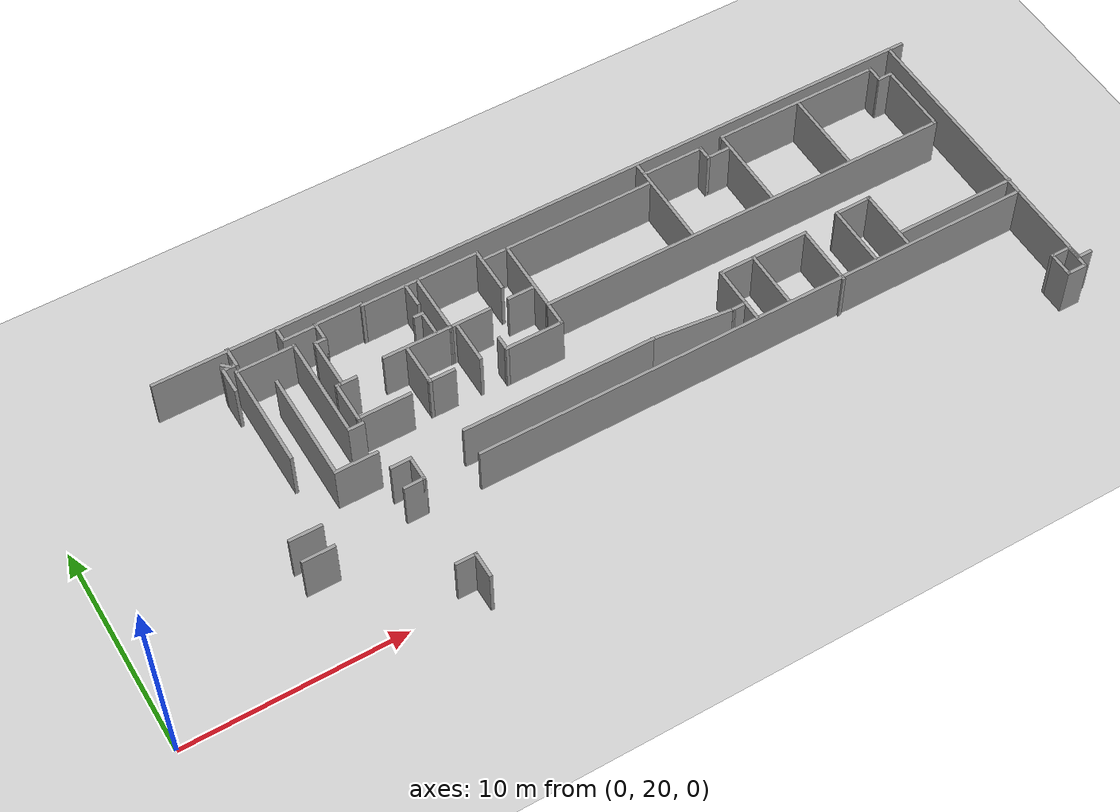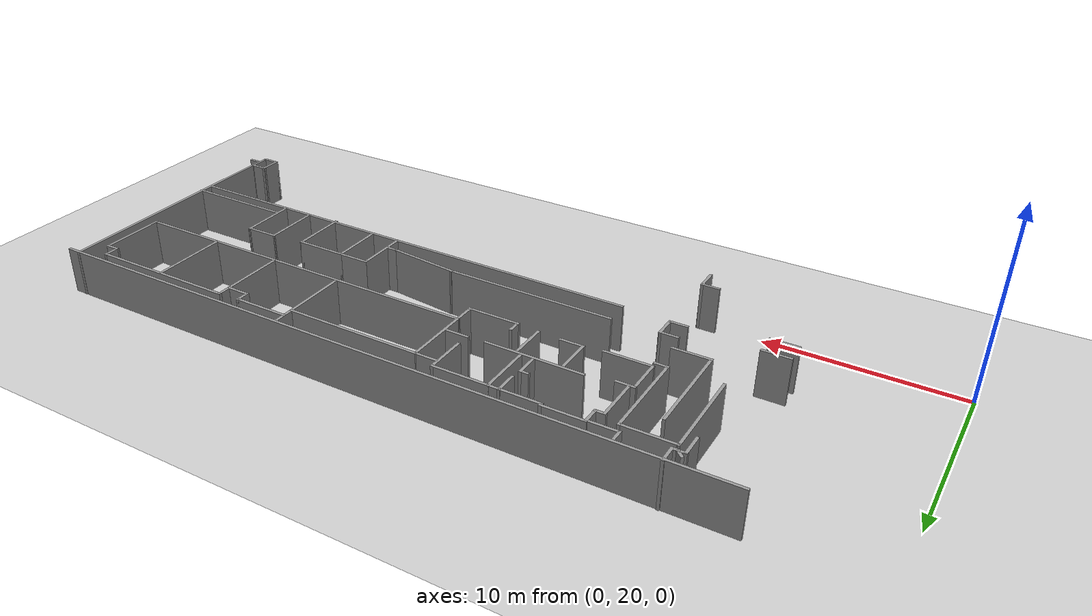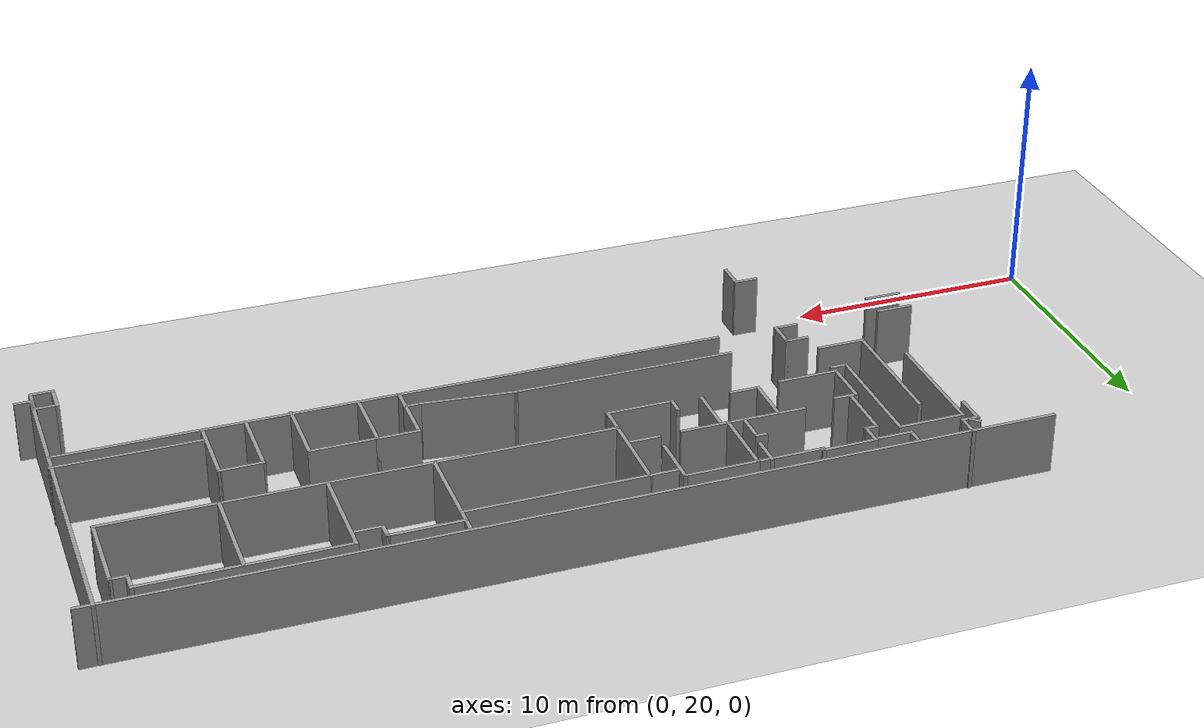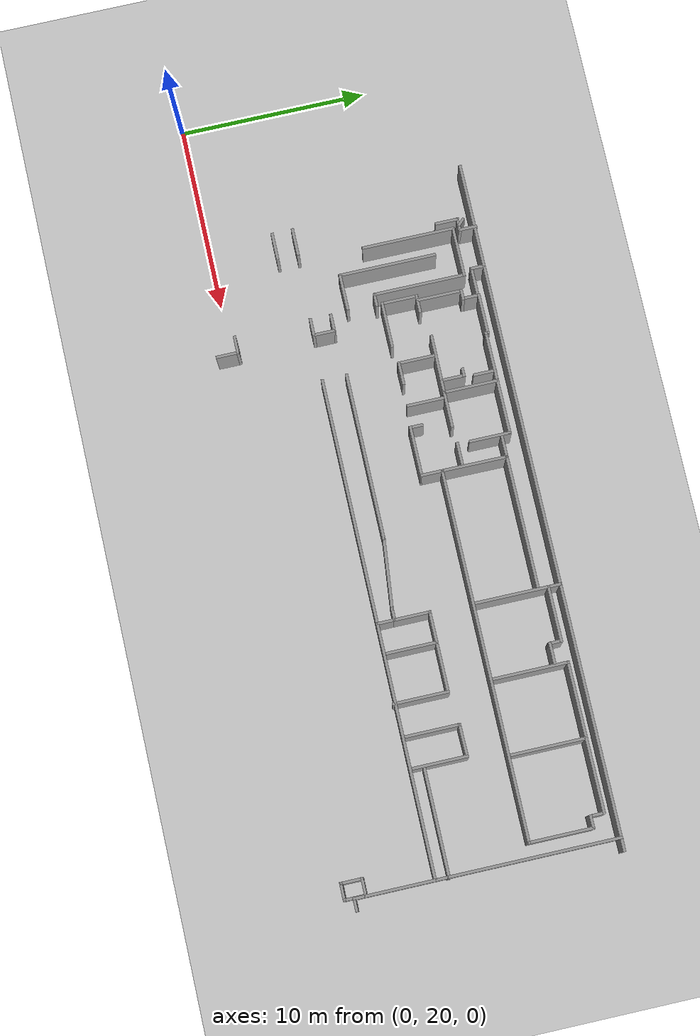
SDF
<sdf version="1.7">
 <world name="default">
  <model name="ground_plane">
   <static>1</static>
   <link name="link">
    <collision name="collision">
     <geometry><plane><normal>0 0 1</normal><size>100 100</size></plane></geometry>
     <surface>
      <contact><collide_bitmask>65535</collide_bitmask></contact>
      <friction><ode><mu>100</mu><mu2>50</mu2></ode></friction>
     </surface>
    </collision>
    <visual name="visual">
     <cast_shadows>0</cast_shadows>
     <geometry><plane><normal>0 0 1</normal><size>100 100</size></plane></geometry>
     <material>
      <script><uri>file://media/materials/scripts/gazebo.material</uri><name>Gazebo/Grey</name></script>
     </material>
    </visual>
   </link>
  </model>
  <model name="Tsudanuma_2-3-without_door">
   <pose>11.8595 12.3796 0 0 -0 0</pose>
   <link name="Wall_12">
    <collision name="Wall_12_Collision">
     <geometry><box><size>37 0.15 2.5</size></box></geometry>
     <pose>0 0 1.25 0 -0 0</pose>
    </collision>
    <visual name="Wall_12_Visual">
     <pose>0 0 1.25 0 -0 0</pose>
     <geometry><box><size>37 0.15 2.5</size></box></geometry>
     <material>
      <script><uri>file://media/materials/scripts/gazebo.material</uri><name>Gazebo/Grey</name></script>
      <ambient>1 1 1 1</ambient>
     </material>
     <meta><layer>0</layer></meta>
    </visual>
    <pose>12.4529 21.66 0 0 -0 3.14159</pose>
   </link>
   <link name="Wall_237">
    <collision name="Wall_237_Collision">
     <geometry><box><size>9 0.15 2.5</size></box></geometry>
     <pose>0 0 1.25 0 -0 0</pose>
    </collision>
    <visual name="Wall_237_Visual">
     <pose>0 0 1.25 0 -0 0</pose>
     <geometry><box><size>9 0.15 2.5</size></box></geometry>
     <material>
      <script><uri>file://media/materials/scripts/gazebo.material</uri><name>Gazebo/Grey</name></script>
      <ambient>1 1 1 1</ambient>
     </material>
     <meta><layer>0</layer></meta>
    </visual>
    <pose>8.20905 13.3088 0 0 -0 0</pose>
   </link>
   <link name="Wall_239">
    <collision name="Wall_239_Collision">
     <geometry><box><size>3.82461 0.15 2.5</size></box></geometry>
     <pose>0 0 1.25 0 -0 0</pose>
    </collision>
    <visual name="Wall_239_Visual">
     <pose>0 0 1.25 0 -0 0</pose>
     <geometry><box><size>3.82461 0.15 2.5</size></box></geometry>
     <material>
      <script><uri>file://media/materials/scripts/gazebo.material</uri><name>Gazebo/Grey</name></script>
      <ambient>1 1 1 1</ambient>
     </material>
     <meta><layer>0</layer></meta>
    </visual>
    <pose>14.4611 13.1148 0 0 -0 3.03583</pose>
   </link>
   <link name="Wall_241">
    <collision name="Wall_241_Collision">
     <geometry><box><size>0.75 0.15 2.5</size></box></geometry>
     <pose>0 0 1.25 0 -0 0</pose>
    </collision>
    <visual name="Wall_241_Visual">
     <pose>0 0 1.25 0 -0 0</pose>
     <geometry><box><size>0.75 0.15 2.5</size></box></geometry>
     <material>
      <script><uri>file://media/materials/scripts/gazebo.material</uri><name>Gazebo/Grey</name></script>
      <ambient>1 1 1 1</ambient>
     </material>
     <meta><layer>0</layer></meta>
    </visual>
    <pose>16.5881 12.9209 0 0 -0 0</pose>
   </link>
   <link name="Wall_242">
    <collision name="Wall_242_Collision">
     <geometry><box><size>2 0.15 2.5</size></box></geometry>
     <pose>0 0 1.25 0 -0 0</pose>
    </collision>
    <visual name="Wall_242_Visual">
     <pose>0 0 1.25 0 -0 0</pose>
     <geometry><box><size>2 0.15 2.5</size></box></geometry>
     <material>
      <script><uri>file://media/materials/scripts/gazebo.material</uri><name>Gazebo/Grey</name></script>
      <ambient>1 1 1 1</ambient>
     </material>
     <meta><layer>0</layer></meta>
    </visual>
    <pose>16.8881 13.8459 0 0 -0 1.5708</pose>
   </link>
   <link name="Wall_243">
    <collision name="Wall_243_Collision">
     <geometry><box><size>1.75 0.15 2.5</size></box></geometry>
     <pose>0 0 1.25 0 -0 0</pose>
    </collision>
    <visual name="Wall_243_Visual">
     <pose>0 0 1.25 0 -0 0</pose>
     <geometry><box><size>1.75 0.15 2.5</size></box></geometry>
     <material>
      <script><uri>file://media/materials/scripts/gazebo.material</uri><name>Gazebo/Grey</name></script>
      <ambient>1 1 1 1</ambient>
     </material>
     <meta><layer>0</layer></meta>
    </visual>
    <pose>17.6881 14.7709 0 0 -0 0</pose>
   </link>
   <link name="Wall_244">
    <collision name="Wall_244_Collision">
     <geometry><box><size>2.75 0.15 2.5</size></box></geometry>
     <pose>0 0 1.25 0 -0 0</pose>
    </collision>
    <visual name="Wall_244_Visual">
     <pose>0 0 1.25 0 -0 0</pose>
     <geometry><box><size>2.75 0.15 2.5</size></box></geometry>
     <material>
      <script><uri>file://media/materials/scripts/gazebo.material</uri><name>Gazebo/Grey</name></script>
      <ambient>1 1 1 1</ambient>
     </material>
     <meta><layer>0</layer></meta>
    </visual>
    <pose>18.4881 13.4709 0 0 -0 -1.5708</pose>
   </link>
   <link name="Wall_246">
    <collision name="Wall_246_Collision">
     <geometry><box><size>1 0.15 2.5</size></box></geometry>
     <pose>0 0 1.25 0 -0 0</pose>
    </collision>
    <visual name="Wall_246_Visual">
     <pose>0 0 1.25 0 -0 0</pose>
     <geometry><box><size>1 0.15 2.5</size></box></geometry>
     <material>
      <script><uri>file://media/materials/scripts/gazebo.material</uri><name>Gazebo/Grey</name></script>
      <ambient>1 1 1 1</ambient>
     </material>
     <meta><layer>0</layer></meta>
    </visual>
    <pose>16.8881 12.4959 0 0 -0 -1.5708</pose>
   </link>
   <link name="Wall_248">
    <collision name="Wall_248_Collision">
     <geometry><box><size>2.75 0.15 2.5</size></box></geometry>
     <pose>0 0 1.25 0 -0 0</pose>
    </collision>
    <visual name="Wall_248_Visual">
     <pose>0 0 1.25 0 -0 0</pose>
     <geometry><box><size>2.75 0.15 2.5</size></box></geometry>
     <material>
      <script><uri>file://media/materials/scripts/gazebo.material</uri><name>Gazebo/Grey</name></script>
      <ambient>1 1 1 1</ambient>
     </material>
     <meta><layer>0</layer></meta>
    </visual>
    <pose>19.7881 14.7709 0 0 -0 0</pose>
   </link>
   <link name="Wall_249">
    <collision name="Wall_249_Collision">
     <geometry><box><size>3 0.15 2.5</size></box></geometry>
     <pose>0 0 1.25 0 -0 0</pose>
    </collision>
    <visual name="Wall_249_Visual">
     <pose>0 0 1.25 0 -0 0</pose>
     <geometry><box><size>3 0.15 2.5</size></box></geometry>
     <material>
      <script><uri>file://media/materials/scripts/gazebo.material</uri><name>Gazebo/Grey</name></script>
      <ambient>1 1 1 1</ambient>
     </material>
     <meta><layer>0</layer></meta>
    </visual>
    <pose>21.0881 13.3459 0 0 -0 -1.5708</pose>
   </link>
   <link name="Wall_251">
    <collision name="Wall_251_Collision">
     <geometry><box><size>3 0.15 2.5</size></box></geometry>
     <pose>0 0 1.25 0 -0 0</pose>
    </collision>
    <visual name="Wall_251_Visual">
     <pose>0 0 1.25 0 -0 0</pose>
     <geometry><box><size>3 0.15 2.5</size></box></geometry>
     <material>
      <script><uri>file://media/materials/scripts/gazebo.material</uri><name>Gazebo/Grey</name></script>
      <ambient>1 1 1 1</ambient>
     </material>
     <meta><layer>0</layer></meta>
    </visual>
    <pose>22.8519 13.5353 0 0 -0 1.5708</pose>
   </link>
   <link name="Wall_252">
    <collision name="Wall_252_Collision">
     <geometry><box><size>1.78264 0.15 2.5</size></box></geometry>
     <pose>0 0 1.25 0 -0 0</pose>
    </collision>
    <visual name="Wall_252_Visual">
     <pose>0 0 1.25 0 -0 0</pose>
     <geometry><box><size>1.78264 0.15 2.5</size></box></geometry>
     <material>
      <script><uri>file://media/materials/scripts/gazebo.material</uri><name>Gazebo/Grey</name></script>
      <ambient>1 1 1 1</ambient>
     </material>
     <meta><layer>0</layer></meta>
    </visual>
    <pose>23.6682 14.9702 0 0 -0 0.01211</pose>
   </link>
   <link name="Wall_253">
    <collision name="Wall_253_Collision">
     <geometry><box><size>3 0.15 2.5</size></box></geometry>
     <pose>0 0 1.25 0 -0 0</pose>
    </collision>
    <visual name="Wall_253_Visual">
     <pose>0 0 1.25 0 -0 0</pose>
     <geometry><box><size>3 0.15 2.5</size></box></geometry>
     <material>
      <script><uri>file://media/materials/scripts/gazebo.material</uri><name>Gazebo/Grey</name></script>
      <ambient>1 1 1 1</ambient>
     </material>
     <meta><layer>0</layer></meta>
    </visual>
    <pose>24.5042 13.555 0 0 -0 -1.5708</pose>
   </link>
   <link name="Wall_256">
    <collision name="Wall_256_Collision">
     <geometry><box><size>5.75 0.15 2.5</size></box></geometry>
     <pose>0 0 1.25 0 -0 0</pose>
    </collision>
    <visual name="Wall_256_Visual">
     <pose>0 0 1.25 0 -0 0</pose>
     <geometry><box><size>5.75 0.15 2.5</size></box></geometry>
     <material>
      <script><uri>file://media/materials/scripts/gazebo.material</uri><name>Gazebo/Grey</name></script>
      <ambient>1 1 1 1</ambient>
     </material>
     <meta><layer>0</layer></meta>
    </visual>
    <pose>27.455 12.7232 0 0 -0 3.14159</pose>
   </link>
   <link name="Wall_258">
    <collision name="Wall_258_Collision">
     <geometry><box><size>14 0.15 2.5</size></box></geometry>
     <pose>0 0 1.25 0 -0 0</pose>
    </collision>
    <visual name="Wall_258_Visual">
     <pose>0 0 1.25 0 -0 0</pose>
     <geometry><box><size>14 0.15 2.5</size></box></geometry>
     <material>
      <script><uri>file://media/materials/scripts/gazebo.material</uri><name>Gazebo/Grey</name></script>
      <ambient>1 1 1 1</ambient>
     </material>
     <meta><layer>0</layer></meta>
    </visual>
    <pose>30.2131 14.7469 0 0 -0 -1.5708</pose>
   </link>
   <link name="Wall_260">
    <collision name="Wall_260_Collision">
     <geometry><box><size>0.75 0.15 2.5</size></box></geometry>
     <pose>0 0 1.25 0 -0 0</pose>
    </collision>
    <visual name="Wall_260_Visual">
     <pose>0 0 1.25 0 -0 0</pose>
     <geometry><box><size>0.75 0.15 2.5</size></box></geometry>
     <material>
      <script><uri>file://media/materials/scripts/gazebo.material</uri><name>Gazebo/Grey</name></script>
      <ambient>1 1 1 1</ambient>
     </material>
     <meta><layer>0</layer></meta>
    </visual>
    <pose>30.5131 7.82186 0 0 -0 0</pose>
   </link>
   <link name="Wall_262">
    <collision name="Wall_262_Collision">
     <geometry><box><size>3.5 0.15 2.5</size></box></geometry>
     <pose>0 0 1.25 0 -0 0</pose>
    </collision>
    <visual name="Wall_262_Visual">
     <pose>0 0 1.25 0 -0 0</pose>
     <geometry><box><size>3.5 0.15 2.5</size></box></geometry>
     <material>
      <script><uri>file://media/materials/scripts/gazebo.material</uri><name>Gazebo/Grey</name></script>
      <ambient>1 1 1 1</ambient>
     </material>
     <meta><layer>0</layer></meta>
    </visual>
    <pose>29.4356 18.7263 0 0 -0 -1.5708</pose>
   </link>
   <link name="Wall_263">
    <collision name="Wall_263_Collision">
     <geometry><box><size>19.75 0.15 2.5</size></box></geometry>
     <pose>0 0 1.25 0 -0 0</pose>
    </collision>
    <visual name="Wall_263_Visual">
     <pose>0 0 1.25 0 -0 0</pose>
     <geometry><box><size>19.75 0.15 2.5</size></box></geometry>
     <material>
      <script><uri>file://media/materials/scripts/gazebo.material</uri><name>Gazebo/Grey</name></script>
      <ambient>1 1 1 1</ambient>
     </material>
     <meta><layer>0</layer></meta>
    </visual>
    <pose>19.6356 17.0513 0 0 -0 3.14159</pose>
   </link>
   <link name="Wall_264">
    <collision name="Wall_264_Collision">
     <geometry><box><size>1.25 0.15 2.5</size></box></geometry>
     <pose>0 0 1.25 0 -0 0</pose>
    </collision>
    <visual name="Wall_264_Visual">
     <pose>0 0 1.25 0 -0 0</pose>
     <geometry><box><size>1.25 0.15 2.5</size></box></geometry>
     <material>
      <script><uri>file://media/materials/scripts/gazebo.material</uri><name>Gazebo/Grey</name></script>
      <ambient>1 1 1 1</ambient>
     </material>
     <meta><layer>0</layer></meta>
    </visual>
    <pose>9.83564 16.5013 0 0 -0 -1.5708</pose>
   </link>
   <link name="Wall_265">
    <collision name="Wall_265_Collision">
     <geometry><box><size>2.75 0.15 2.5</size></box></geometry>
     <pose>0 0 1.25 0 -0 0</pose>
    </collision>
    <visual name="Wall_265_Visual">
     <pose>0 0 1.25 0 -0 0</pose>
     <geometry><box><size>2.75 0.15 2.5</size></box></geometry>
     <material>
      <script><uri>file://media/materials/scripts/gazebo.material</uri><name>Gazebo/Grey</name></script>
      <ambient>1 1 1 1</ambient>
     </material>
     <meta><layer>0</layer></meta>
    </visual>
    <pose>8.53564 15.9513 0 0 -0 3.14159</pose>
   </link>
   <link name="Wall_266">
    <collision name="Wall_266_Collision">
     <geometry><box><size>0.75 0.15 2.5</size></box></geometry>
     <pose>0 0 1.25 0 -0 0</pose>
    </collision>
    <visual name="Wall_266_Visual">
     <pose>0 0 1.25 0 -0 0</pose>
     <geometry><box><size>0.75 0.15 2.5</size></box></geometry>
     <material>
      <script><uri>file://media/materials/scripts/gazebo.material</uri><name>Gazebo/Grey</name></script>
      <ambient>1 1 1 1</ambient>
     </material>
     <meta><layer>0</layer></meta>
    </visual>
    <pose>7.23564 16.2513 0 0 -0 1.5708</pose>
   </link>
   <link name="Wall_268">
    <collision name="Wall_268_Collision">
     <geometry><box><size>0.75 0.15 2.5</size></box></geometry>
     <pose>0 0 1.25 0 -0 0</pose>
    </collision>
    <visual name="Wall_268_Visual">
     <pose>0 0 1.25 0 -0 0</pose>
     <geometry><box><size>0.75 0.15 2.5</size></box></geometry>
     <material>
      <script><uri>file://media/materials/scripts/gazebo.material</uri><name>Gazebo/Grey</name></script>
      <ambient>1 1 1 1</ambient>
     </material>
     <meta><layer>0</layer></meta>
    </visual>
    <pose>28.8218 20.8061 0 0 -0 -1.5708</pose>
   </link>
   <link name="Wall_271">
    <collision name="Wall_271_Collision">
     <geometry><box><size>0.75 0.15 2.5</size></box></geometry>
     <pose>0 0 1.25 0 -0 0</pose>
    </collision>
    <visual name="Wall_271_Visual">
     <pose>0 0 1.25 0 -0 0</pose>
     <geometry><box><size>0.75 0.15 2.5</size></box></geometry>
     <material>
      <script><uri>file://media/materials/scripts/gazebo.material</uri><name>Gazebo/Grey</name></script>
      <ambient>1 1 1 1</ambient>
     </material>
     <meta><layer>0</layer></meta>
    </visual>
    <pose>29.1356 20.4013 0 0 -0 3.14159</pose>
   </link>
   <link name="Wall_273">
    <collision name="Wall_273_Collision">
     <geometry><box><size>8 0.15 2.5</size></box></geometry>
     <pose>0 0 1.25 0 -0 0</pose>
    </collision>
    <visual name="Wall_273_Visual">
     <pose>0 0 1.25 0 -0 0</pose>
     <geometry><box><size>8 0.15 2.5</size></box></geometry>
     <material>
      <script><uri>file://media/materials/scripts/gazebo.material</uri><name>Gazebo/Grey</name></script>
      <ambient>1 1 1 1</ambient>
     </material>
     <meta><layer>0</layer></meta>
    </visual>
    <pose>24.8968 21.1061 0 0 -0 3.14159</pose>
   </link>
   <link name="Wall_274">
    <collision name="Wall_274_Collision">
     <geometry><box><size>4.1 0.15 2.5</size></box></geometry>
     <pose>0 0 1.25 0 -0 0</pose>
    </collision>
    <visual name="Wall_274_Visual">
     <pose>0 0 1.25 0 -0 0</pose>
     <geometry><box><size>4.1 0.15 2.5</size></box></geometry>
     <material>
      <script><uri>file://media/materials/scripts/gazebo.material</uri><name>Gazebo/Grey</name></script>
      <ambient>1 1 1 1</ambient>
     </material>
     <meta><layer>0</layer></meta>
    </visual>
    <pose>20.9718 19.1311 0 0 -0 -1.5708</pose>
   </link>
   <link name="Wall_276">
    <collision name="Wall_276_Collision">
     <geometry><box><size>4.1 0.15 2.5</size></box></geometry>
     <pose>0 0 1.25 0 -0 0</pose>
    </collision>
    <visual name="Wall_276_Visual">
     <pose>0 0 1.25 0 -0 0</pose>
     <geometry><box><size>4.1 0.15 2.5</size></box></geometry>
     <material>
      <script><uri>file://media/materials/scripts/gazebo.material</uri><name>Gazebo/Grey</name></script>
      <ambient>1 1 1 1</ambient>
     </material>
     <meta><layer>0</layer></meta>
    </visual>
    <pose>24.9422 19.0655 0 0 -0 1.5708</pose>
   </link>
   <link name="Wall_278">
    <collision name="Wall_278_Collision">
     <geometry><box><size>4.7 0.15 2.5</size></box></geometry>
     <pose>0 0 1.25 0 -0 0</pose>
    </collision>
    <visual name="Wall_278_Visual">
     <pose>0 0 1.25 0 -0 0</pose>
     <geometry><box><size>4.7 0.15 2.5</size></box></geometry>
     <material>
      <script><uri>file://media/materials/scripts/gazebo.material</uri><name>Gazebo/Grey</name></script>
      <ambient>1 1 1 1</ambient>
     </material>
     <meta><layer>0</layer></meta>
    </visual>
    <pose>16.9617 19.3542 0 0 -0 1.5708</pose>
   </link>
   <link name="Wall_280">
    <collision name="Wall_280_Collision">
     <geometry><box><size>3 0.15 2.5</size></box></geometry>
     <pose>0 0 1.25 0 -0 0</pose>
    </collision>
    <visual name="Wall_280_Visual">
     <pose>0 0 1.25 0 -0 0</pose>
     <geometry><box><size>3 0.15 2.5</size></box></geometry>
     <material>
      <script><uri>file://media/materials/scripts/gazebo.material</uri><name>Gazebo/Grey</name></script>
      <ambient>1 1 1 1</ambient>
     </material>
     <meta><layer>0</layer></meta>
    </visual>
    <pose>18.398 21.0242 0 0 -0 0</pose>
   </link>
   <link name="Wall_281">
    <collision name="Wall_281_Collision">
     <geometry><box><size>0.75 0.15 2.5</size></box></geometry>
     <pose>0 0 1.25 0 -0 0</pose>
    </collision>
    <visual name="Wall_281_Visual">
     <pose>0 0 1.25 0 -0 0</pose>
     <geometry><box><size>0.75 0.15 2.5</size></box></geometry>
     <material>
      <script><uri>file://media/materials/scripts/gazebo.material</uri><name>Gazebo/Grey</name></script>
      <ambient>1 1 1 1</ambient>
     </material>
     <meta><layer>0</layer></meta>
    </visual>
    <pose>19.823 20.7242 0 0 -0 -1.5708</pose>
   </link>
   <link name="Wall_282">
    <collision name="Wall_282_Collision">
     <geometry><box><size>1.25 0.15 2.5</size></box></geometry>
     <pose>0 0 1.25 0 -0 0</pose>
    </collision>
    <visual name="Wall_282_Visual">
     <pose>0 0 1.25 0 -0 0</pose>
     <geometry><box><size>1.25 0.15 2.5</size></box></geometry>
     <material>
      <script><uri>file://media/materials/scripts/gazebo.material</uri><name>Gazebo/Grey</name></script>
      <ambient>1 1 1 1</ambient>
     </material>
     <meta><layer>0</layer></meta>
    </visual>
    <pose>20.373 20.4242 0 0 -0 0</pose>
   </link>
   <link name="Wall_284">
    <collision name="Wall_284_Collision">
     <geometry><box><size>7.25 0.15 2.5</size></box></geometry>
     <pose>0 0 1.25 0 -0 0</pose>
    </collision>
    <visual name="Wall_284_Visual">
     <pose>0 0 1.25 0 -0 0</pose>
     <geometry><box><size>7.25 0.15 2.5</size></box></geometry>
     <material>
      <script><uri>file://media/materials/scripts/gazebo.material</uri><name>Gazebo/Grey</name></script>
      <ambient>1 1 1 1</ambient>
     </material>
     <meta><layer>0</layer></meta>
    </visual>
    <pose>13.4004 20.493 0 0 -0 3.14159</pose>
   </link>
   <link name="Wall_285">
    <collision name="Wall_285_Collision">
     <geometry><box><size>3.59171 0.15 2.5</size></box></geometry>
     <pose>0 0 1.25 0 -0 0</pose>
    </collision>
    <visual name="Wall_285_Visual">
     <pose>0 0 1.25 0 -0 0</pose>
     <geometry><box><size>3.59171 0.15 2.5</size></box></geometry>
     <material>
      <script><uri>file://media/materials/scripts/gazebo.material</uri><name>Gazebo/Grey</name></script>
      <ambient>1 1 1 1</ambient>
     </material>
     <meta><layer>0</layer></meta>
    </visual>
    <pose>9.84301 18.7721 0 0 -0 -1.57508</pose>
   </link>
   <link name="Wall_287">
    <collision name="Wall_287_Collision">
     <geometry><box><size>1.25 0.15 2.5</size></box></geometry>
     <pose>0 0 1.25 0 -0 0</pose>
    </collision>
    <visual name="Wall_287_Visual">
     <pose>0 0 1.25 0 -0 0</pose>
     <geometry><box><size>1.25 0.15 2.5</size></box></geometry>
     <material>
      <script><uri>file://media/materials/scripts/gazebo.material</uri><name>Gazebo/Grey</name></script>
      <ambient>1 1 1 1</ambient>
     </material>
     <meta><layer>0</layer></meta>
    </visual>
    <pose>9.30039 20.493 0 0 -0 3.14159</pose>
   </link>
   <link name="Wall_289">
    <collision name="Wall_289_Collision">
     <geometry><box><size>2.25 0.15 2.5</size></box></geometry>
     <pose>0 0 1.25 0 -0 0</pose>
    </collision>
    <visual name="Wall_289_Visual">
     <pose>0 0 1.25 0 -0 0</pose>
     <geometry><box><size>2.25 0.15 2.5</size></box></geometry>
     <material>
      <script><uri>file://media/materials/scripts/gazebo.material</uri><name>Gazebo/Grey</name></script>
      <ambient>1 1 1 1</ambient>
     </material>
     <meta><layer>0</layer></meta>
    </visual>
    <pose>8.64204 19.8838 0 0 -0 -1.5708</pose>
   </link>
   <link name="Wall_291">
    <collision name="Wall_291_Collision">
     <geometry><box><size>3 0.15 2.5</size></box></geometry>
     <pose>0 0 1.25 0 -0 0</pose>
    </collision>
    <visual name="Wall_291_Visual">
     <pose>0 0 1.25 0 -0 0</pose>
     <geometry><box><size>3 0.15 2.5</size></box></geometry>
     <material>
      <script><uri>file://media/materials/scripts/gazebo.material</uri><name>Gazebo/Grey</name></script>
      <ambient>1 1 1 1</ambient>
     </material>
     <meta><layer>0</layer></meta>
    </visual>
    <pose>7.21704 20.9338 0 0 -0 3.14159</pose>
   </link>
   <link name="Wall_292">
    <collision name="Wall_292_Collision">
     <geometry><box><size>3 0.15 2.5</size></box></geometry>
     <pose>0 0 1.25 0 -0 0</pose>
    </collision>
    <visual name="Wall_292_Visual">
     <pose>0 0 1.25 0 -0 0</pose>
     <geometry><box><size>3 0.15 2.5</size></box></geometry>
     <material>
      <script><uri>file://media/materials/scripts/gazebo.material</uri><name>Gazebo/Grey</name></script>
      <ambient>1 1 1 1</ambient>
     </material>
     <meta><layer>0</layer></meta>
    </visual>
    <pose>5.79204 19.5088 0 0 -0 -1.5708</pose>
   </link>
   <link name="Wall_293">
    <collision name="Wall_293_Collision">
     <geometry><box><size>2 0.15 2.5</size></box></geometry>
     <pose>0 0 1.25 0 -0 0</pose>
    </collision>
    <visual name="Wall_293_Visual">
     <pose>0 0 1.25 0 -0 0</pose>
     <geometry><box><size>2 0.15 2.5</size></box></geometry>
     <material>
      <script><uri>file://media/materials/scripts/gazebo.material</uri><name>Gazebo/Grey</name></script>
      <ambient>1 1 1 1</ambient>
     </material>
     <meta><layer>0</layer></meta>
    </visual>
    <pose>6.71704 18.0838 0 0 -0 0</pose>
   </link>
   <link name="Wall_296">
    <collision name="Wall_296_Collision">
     <geometry><box><size>2 0.15 2.5</size></box></geometry>
     <pose>0 0 1.25 0 -0 0</pose>
    </collision>
    <visual name="Wall_296_Visual">
     <pose>0 0 1.25 0 -0 0</pose>
     <geometry><box><size>2 0.15 2.5</size></box></geometry>
     <material>
      <script><uri>file://media/materials/scripts/gazebo.material</uri><name>Gazebo/Grey</name></script>
      <ambient>1 1 1 1</ambient>
     </material>
     <meta><layer>0</layer></meta>
    </visual>
    <pose>6.07606 17.0094 0 0 -0 1.5708</pose>
   </link>
   <link name="Wall_298">
    <collision name="Wall_298_Collision">
     <geometry><box><size>1.25 0.15 2.5</size></box></geometry>
     <pose>0 0 1.25 0 -0 0</pose>
    </collision>
    <visual name="Wall_298_Visual">
     <pose>0 0 1.25 0 -0 0</pose>
     <geometry><box><size>1.25 0.15 2.5</size></box></geometry>
     <material>
      <script><uri>file://media/materials/scripts/gazebo.material</uri><name>Gazebo/Grey</name></script>
      <ambient>1 1 1 1</ambient>
     </material>
     <meta><layer>0</layer></meta>
    </visual>
    <pose>9.15813 18.1417 0 0 -0 0</pose>
   </link>
   <link name="Wall_300">
    <collision name="Wall_300_Collision">
     <geometry><box><size>1.25 0.15 2.5</size></box></geometry>
     <pose>0 0 1.25 0 -0 0</pose>
    </collision>
    <visual name="Wall_300_Visual">
     <pose>0 0 1.25 0 -0 0</pose>
     <geometry><box><size>1.25 0.15 2.5</size></box></geometry>
     <material>
      <script><uri>file://media/materials/scripts/gazebo.material</uri><name>Gazebo/Grey</name></script>
      <ambient>1 1 1 1</ambient>
     </material>
     <meta><layer>0</layer></meta>
    </visual>
    <pose>4.30525 16.1184 0 0 -0 3.14159</pose>
   </link>
   <link name="Wall_301">
    <collision name="Wall_301_Collision">
     <geometry><box><size>2 0.15 2.5</size></box></geometry>
     <pose>0 0 1.25 0 -0 0</pose>
    </collision>
    <visual name="Wall_301_Visual">
     <pose>0 0 1.25 0 -0 0</pose>
     <geometry><box><size>2 0.15 2.5</size></box></geometry>
     <material>
      <script><uri>file://media/materials/scripts/gazebo.material</uri><name>Gazebo/Grey</name></script>
      <ambient>1 1 1 1</ambient>
     </material>
     <meta><layer>0</layer></meta>
    </visual>
    <pose>3.75525 17.0434 0 0 -0 1.5708</pose>
   </link>
   <link name="Wall_303">
    <collision name="Wall_303_Collision">
     <geometry><box><size>3.21202 0.15 2.5</size></box></geometry>
     <pose>0 0 1.25 0 -0 0</pose>
    </collision>
    <visual name="Wall_303_Visual">
     <pose>0 0 1.25 0 -0 0</pose>
     <geometry><box><size>3.21202 0.15 2.5</size></box></geometry>
     <material>
      <script><uri>file://media/materials/scripts/gazebo.material</uri><name>Gazebo/Grey</name></script>
      <ambient>1 1 1 1</ambient>
     </material>
     <meta><layer>0</layer></meta>
    </visual>
    <pose>4.26108 18.0958 0 0 -0 -0.007848</pose>
   </link>
   <link name="Wall_305">
    <collision name="Wall_305_Collision">
     <geometry><box><size>0.5 0.15 2.5</size></box></geometry>
     <pose>0 0 1.25 0 -0 0</pose>
    </collision>
    <visual name="Wall_305_Visual">
     <pose>0 0 1.25 0 -0 0</pose>
     <geometry><box><size>0.5 0.15 2.5</size></box></geometry>
     <material>
      <script><uri>file://media/materials/scripts/gazebo.material</uri><name>Gazebo/Grey</name></script>
      <ambient>1 1 1 1</ambient>
     </material>
     <meta><layer>0</layer></meta>
    </visual>
    <pose>4.97373 19.2947 0 0 -0 0</pose>
   </link>
   <link name="Wall_306">
    <collision name="Wall_306_Collision">
     <geometry><box><size>1.25 0.15 2.5</size></box></geometry>
     <pose>0 0 1.25 0 -0 0</pose>
    </collision>
    <visual name="Wall_306_Visual">
     <pose>0 0 1.25 0 -0 0</pose>
     <geometry><box><size>1.25 0.15 2.5</size></box></geometry>
     <material>
      <script><uri>file://media/materials/scripts/gazebo.material</uri><name>Gazebo/Grey</name></script>
      <ambient>1 1 1 1</ambient>
     </material>
     <meta><layer>0</layer></meta>
    </visual>
    <pose>5.14873 18.7447 0 0 -0 -1.5708</pose>
   </link>
   <link name="Wall_310">
    <collision name="Wall_310_Collision">
     <geometry><box><size>2.75 0.15 2.5</size></box></geometry>
     <pose>0 0 1.25 0 -0 0</pose>
    </collision>
    <visual name="Wall_310_Visual">
     <pose>0 0 1.25 0 -0 0</pose>
     <geometry><box><size>2.75 0.15 2.5</size></box></geometry>
     <material>
      <script><uri>file://media/materials/scripts/gazebo.material</uri><name>Gazebo/Grey</name></script>
      <ambient>1 1 1 1</ambient>
     </material>
     <meta><layer>0</layer></meta>
    </visual>
    <pose>4.49205 20.9338 0 0 -0 3.14159</pose>
   </link>
   <link name="Wall_312">
    <collision name="Wall_312_Collision">
     <geometry><box><size>1.25 0.15 2.5</size></box></geometry>
     <pose>0 0 1.25 0 -0 0</pose>
    </collision>
    <visual name="Wall_312_Visual">
     <pose>0 0 1.25 0 -0 0</pose>
     <geometry><box><size>1.25 0.15 2.5</size></box></geometry>
     <material>
      <script><uri>file://media/materials/scripts/gazebo.material</uri><name>Gazebo/Grey</name></script>
      <ambient>1 1 1 1</ambient>
     </material>
     <meta><layer>0</layer></meta>
    </visual>
    <pose>5.23958 20.3986 0 0 -0 1.5708</pose>
   </link>
   <link name="Wall_317">
    <collision name="Wall_317_Collision">
     <geometry><box><size>0.25 0.15 2.5</size></box></geometry>
     <pose>0 0 1.25 0 -0 0</pose>
    </collision>
    <visual name="Wall_317_Visual">
     <pose>0 0 1.25 0 -0 0</pose>
     <geometry><box><size>0.25 0.15 2.5</size></box></geometry>
     <material>
      <script><uri>file://media/materials/scripts/gazebo.material</uri><name>Gazebo/Grey</name></script>
      <ambient>1 1 1 1</ambient>
     </material>
     <meta><layer>0</layer></meta>
    </visual>
    <pose>3.19204 20.9838 0 0 -0 1.5708</pose>
   </link>
   <link name="Wall_318">
    <collision name="Wall_318_Collision">
     <geometry><box><size>2.25 0.15 2.5</size></box></geometry>
     <pose>0 0 1.25 0 -0 0</pose>
    </collision>
    <visual name="Wall_318_Visual">
     <pose>0 0 1.25 0 -0 0</pose>
     <geometry><box><size>2.25 0.15 2.5</size></box></geometry>
     <material>
      <script><uri>file://media/materials/scripts/gazebo.material</uri><name>Gazebo/Grey</name></script>
      <ambient>1 1 1 1</ambient>
     </material>
     <meta><layer>0</layer></meta>
    </visual>
    <pose>2.14204 21.0338 0 0 -0 3.14159</pose>
   </link>
   <link name="Wall_319">
    <collision name="Wall_319_Collision">
     <geometry><box><size>1 0.15 2.5</size></box></geometry>
     <pose>0 0 1.25 0 -0 0</pose>
    </collision>
    <visual name="Wall_319_Visual">
     <pose>0 0 1.25 0 -0 0</pose>
     <geometry><box><size>1 0.15 2.5</size></box></geometry>
     <material>
      <script><uri>file://media/materials/scripts/gazebo.material</uri><name>Gazebo/Grey</name></script>
      <ambient>1 1 1 1</ambient>
     </material>
     <meta><layer>0</layer></meta>
    </visual>
    <pose>1.09204 20.6088 0 0 -0 -1.5708</pose>
   </link>
   <link name="Wall_320">
    <collision name="Wall_320_Collision">
     <geometry><box><size>0.584496 0.15 2.5</size></box></geometry>
     <pose>0 0 1.25 0 -0 0</pose>
    </collision>
    <visual name="Wall_320_Visual">
     <pose>0 0 1.25 0 -0 0</pose>
     <geometry><box><size>0.584496 0.15 2.5</size></box></geometry>
     <material>
      <script><uri>file://media/materials/scripts/gazebo.material</uri><name>Gazebo/Grey</name></script>
      <ambient>1 1 1 1</ambient>
     </material>
     <meta><layer>0</layer></meta>
    </visual>
    <pose>0.874796 20.1838 0 0 -0 3.14159</pose>
   </link>
   <link name="Wall_321">
    <collision name="Wall_321_Collision">
     <geometry><box><size>2.5 0.15 2.5</size></box></geometry>
     <pose>0 0 1.25 0 -0 0</pose>
    </collision>
    <visual name="Wall_321_Visual">
     <pose>0 0 1.25 0 -0 0</pose>
     <geometry><box><size>2.5 0.15 2.5</size></box></geometry>
     <material>
      <script><uri>file://media/materials/scripts/gazebo.material</uri><name>Gazebo/Grey</name></script>
      <ambient>1 1 1 1</ambient>
     </material>
     <meta><layer>0</layer></meta>
    </visual>
    <pose>0.657548 19.0023 0 0 -0 -1.5708</pose>
   </link>
   <link name="Wall_323">
    <collision name="Wall_323_Collision">
     <geometry><box><size>1 0.15 2.5</size></box></geometry>
     <pose>0 0 1.25 0 -0 0</pose>
    </collision>
    <visual name="Wall_323_Visual">
     <pose>0 0 1.25 0 -0 0</pose>
     <geometry><box><size>1 0.15 2.5</size></box></geometry>
     <material>
      <script><uri>file://media/materials/scripts/gazebo.material</uri><name>Gazebo/Grey</name></script>
      <ambient>1 1 1 1</ambient>
     </material>
     <meta><layer>0</layer></meta>
    </visual>
    <pose>0.844704 17.8222 0 0 -0 0</pose>
   </link>
   <link name="Wall_325">
    <collision name="Wall_325_Collision">
     <geometry><box><size>2 0.15 2.5</size></box></geometry>
     <pose>0 0 1.25 0 -0 0</pose>
    </collision>
    <visual name="Wall_325_Visual">
     <pose>0 0 1.25 0 -0 0</pose>
     <geometry><box><size>2 0.15 2.5</size></box></geometry>
     <material>
      <script><uri>file://media/materials/scripts/gazebo.material</uri><name>Gazebo/Grey</name></script>
      <ambient>1 1 1 1</ambient>
     </material>
     <meta><layer>0</layer></meta>
    </visual>
    <pose>0.419704 16.8972 0 0 -0 -1.5708</pose>
   </link>
   <link name="Wall_326">
    <collision name="Wall_326_Collision">
     <geometry><box><size>2.5 0.15 2.5</size></box></geometry>
     <pose>0 0 1.25 0 -0 0</pose>
    </collision>
    <visual name="Wall_326_Visual">
     <pose>0 0 1.25 0 -0 0</pose>
     <geometry><box><size>2.5 0.15 2.5</size></box></geometry>
     <material>
      <script><uri>file://media/materials/scripts/gazebo.material</uri><name>Gazebo/Grey</name></script>
      <ambient>1 1 1 1</ambient>
     </material>
     <meta><layer>0</layer></meta>
    </visual>
    <pose>1.5947 15.9722 0 0 -0 0</pose>
   </link>
   <link name="Wall_328">
    <collision name="Wall_328_Collision">
     <geometry><box><size>0.75 0.15 2.5</size></box></geometry>
     <pose>0 0 1.25 0 -0 0</pose>
    </collision>
    <visual name="Wall_328_Visual">
     <pose>0 0 1.25 0 -0 0</pose>
     <geometry><box><size>0.75 0.15 2.5</size></box></geometry>
     <material>
      <script><uri>file://media/materials/scripts/gazebo.material</uri><name>Gazebo/Grey</name></script>
      <ambient>1 1 1 1</ambient>
     </material>
     <meta><layer>0</layer></meta>
    </visual>
    <pose>-0.394673 21.2823 0 0 -0 -1.5708</pose>
   </link>
   <link name="Wall_329">
    <collision name="Wall_329_Collision">
     <geometry><box><size>1.5 0.15 2.5</size></box></geometry>
     <pose>0 0 1.25 0 -0 0</pose>
    </collision>
    <visual name="Wall_329_Visual">
     <pose>0 0 1.25 0 -0 0</pose>
     <geometry><box><size>1.5 0.15 2.5</size></box></geometry>
     <material>
      <script><uri>file://media/materials/scripts/gazebo.material</uri><name>Gazebo/Grey</name></script>
      <ambient>1 1 1 1</ambient>
     </material>
     <meta><layer>0</layer></meta>
    </visual>
    <pose>0.280327 20.9823 0 0 -0 0</pose>
   </link>
   <link name="Wall_331">
    <collision name="Wall_331_Collision">
     <geometry><box><size>5.25 0.15 2.5</size></box></geometry>
     <pose>0 0 1.25 0 -0 0</pose>
    </collision>
    <visual name="Wall_331_Visual">
     <pose>0 0 1.25 0 -0 0</pose>
     <geometry><box><size>5.25 0.15 2.5</size></box></geometry>
     <material>
      <script><uri>file://media/materials/scripts/gazebo.material</uri><name>Gazebo/Grey</name></script>
      <ambient>1 1 1 1</ambient>
     </material>
     <meta><layer>0</layer></meta>
    </visual>
    <pose>-1.56113 16.6869 0 0 -0 -1.5708</pose>
   </link>
   <link name="Wall_332">
    <collision name="Wall_332_Collision">
     <geometry><box><size>2 0.15 2.5</size></box></geometry>
     <pose>0 0 1.25 0 -0 0</pose>
    </collision>
    <visual name="Wall_332_Visual">
     <pose>0 0 1.25 0 -0 0</pose>
     <geometry><box><size>2 0.15 2.5</size></box></geometry>
     <material>
      <script><uri>file://media/materials/scripts/gazebo.material</uri><name>Gazebo/Grey</name></script>
      <ambient>1 1 1 1</ambient>
     </material>
     <meta><layer>0</layer></meta>
    </visual>
    <pose>-0.636127 14.1369 0 0 -0 0</pose>
   </link>
   <link name="Wall_334">
    <collision name="Wall_334_Collision">
     <geometry><box><size>5 0.15 2.5</size></box></geometry>
     <pose>0 0 1.25 0 -0 0</pose>
    </collision>
    <visual name="Wall_334_Visual">
     <pose>0 0 1.25 0 -0 0</pose>
     <geometry><box><size>5 0.15 2.5</size></box></geometry>
     <material>
      <script><uri>file://media/materials/scripts/gazebo.material</uri><name>Gazebo/Grey</name></script>
      <ambient>1 1 1 1</ambient>
     </material>
     <meta><layer>0</layer></meta>
    </visual>
    <pose>-2.74883 18.0988 0 0 -0 1.5708</pose>
   </link>
   <link name="Wall_335">
    <collision name="Wall_335_Collision">
     <geometry><box><size>2.75 0.15 2.5</size></box></geometry>
     <pose>0 0 1.25 0 -0 0</pose>
    </collision>
    <visual name="Wall_335_Visual">
     <pose>0 0 1.25 0 -0 0</pose>
     <geometry><box><size>2.75 0.15 2.5</size></box></geometry>
     <material>
      <script><uri>file://media/materials/scripts/gazebo.material</uri><name>Gazebo/Grey</name></script>
      <ambient>1 1 1 1</ambient>
     </material>
     <meta><layer>0</layer></meta>
    </visual>
    <pose>-1.44883 20.5238 0 0 -0 0</pose>
   </link>
   <link name="Wall_336">
    <collision name="Wall_336_Collision">
     <geometry><box><size>5 0.15 2.5</size></box></geometry>
     <pose>0 0 1.25 0 -0 0</pose>
    </collision>
    <visual name="Wall_336_Visual">
     <pose>0 0 1.25 0 -0 0</pose>
     <geometry><box><size>5 0.15 2.5</size></box></geometry>
     <material>
      <script><uri>file://media/materials/scripts/gazebo.material</uri><name>Gazebo/Grey</name></script>
      <ambient>1 1 1 1</ambient>
     </material>
     <meta><layer>0</layer></meta>
    </visual>
    <pose>-0.148833 18.0988 0 0 -0 -1.5708</pose>
   </link>
   <link name="Wall_337">
    <collision name="Wall_337_Collision">
     <geometry><box><size>0.75 0.15 2.5</size></box></geometry>
     <pose>0 0 1.25 0 -0 0</pose>
    </collision>
    <visual name="Wall_337_Visual">
     <pose>0 0 1.25 0 -0 0</pose>
     <geometry><box><size>0.75 0.15 2.5</size></box></geometry>
     <material>
      <script><uri>file://media/materials/scripts/gazebo.material</uri><name>Gazebo/Grey</name></script>
      <ambient>1 1 1 1</ambient>
     </material>
     <meta><layer>0</layer></meta>
    </visual>
    <pose>0.151167 15.6738 0 0 -0 0</pose>
   </link>
   <link name="Wall_341">
    <collision name="Wall_341_Collision">
     <geometry><box><size>1 0.15 2.5</size></box></geometry>
     <pose>0 0 1.25 0 -0 0</pose>
    </collision>
    <visual name="Wall_341_Visual">
     <pose>0 0 1.25 0 -0 0</pose>
     <geometry><box><size>1 0.15 2.5</size></box></geometry>
     <material>
      <script><uri>file://media/materials/scripts/gazebo.material</uri><name>Gazebo/Grey</name></script>
      <ambient>1 1 1 1</ambient>
     </material>
     <meta><layer>0</layer></meta>
    </visual>
    <pose>0.869952 13.199 0 0 -0 0</pose>
   </link>
   <link name="Wall_342">
    <collision name="Wall_342_Collision">
     <geometry><box><size>1.25 0.15 2.5</size></box></geometry>
     <pose>0 0 1.25 0 -0 0</pose>
    </collision>
    <visual name="Wall_342_Visual">
     <pose>0 0 1.25 0 -0 0</pose>
     <geometry><box><size>1.25 0.15 2.5</size></box></geometry>
     <material>
      <script><uri>file://media/materials/scripts/gazebo.material</uri><name>Gazebo/Grey</name></script>
      <ambient>1 1 1 1</ambient>
     </material>
     <meta><layer>0</layer></meta>
    </visual>
    <pose>1.29495 12.649 0 0 -0 -1.5708</pose>
   </link>
   <link name="Wall_343">
    <collision name="Wall_343_Collision">
     <geometry><box><size>1 0.15 2.5</size></box></geometry>
     <pose>0 0 1.25 0 -0 0</pose>
    </collision>
    <visual name="Wall_343_Visual">
     <pose>0 0 1.25 0 -0 0</pose>
     <geometry><box><size>1 0.15 2.5</size></box></geometry>
     <material>
      <script><uri>file://media/materials/scripts/gazebo.material</uri><name>Gazebo/Grey</name></script>
      <ambient>1 1 1 1</ambient>
     </material>
     <meta><layer>0</layer></meta>
    </visual>
    <pose>0.869952 12.099 0 0 -0 3.14159</pose>
   </link>
   <link name="Wall_345">
    <collision name="Wall_345_Collision">
     <geometry><box><size>1 0.15 2.5</size></box></geometry>
     <pose>0 0 1.25 0 -0 0</pose>
    </collision>
    <visual name="Wall_345_Visual">
     <pose>0 0 1.25 0 -0 0</pose>
     <geometry><box><size>1 0.15 2.5</size></box></geometry>
     <material>
      <script><uri>file://media/materials/scripts/gazebo.material</uri><name>Gazebo/Grey</name></script>
      <ambient>1 1 1 1</ambient>
     </material>
     <meta><layer>0</layer></meta>
    </visual>
    <pose>0.915055 8.01213 0 0 -0 0</pose>
   </link>
   <link name="Wall_346">
    <collision name="Wall_346_Collision">
     <geometry><box><size>1.25 0.15 2.5</size></box></geometry>
     <pose>0 0 1.25 0 -0 0</pose>
    </collision>
    <visual name="Wall_346_Visual">
     <pose>0 0 1.25 0 -0 0</pose>
     <geometry><box><size>1.25 0.15 2.5</size></box></geometry>
     <material>
      <script><uri>file://media/materials/scripts/gazebo.material</uri><name>Gazebo/Grey</name></script>
      <ambient>1 1 1 1</ambient>
     </material>
     <meta><layer>0</layer></meta>
    </visual>
    <pose>1.34005 7.46213 0 0 -0 -1.5708</pose>
   </link>
   <link name="Wall_367">
    <collision name="Wall_367_Collision">
     <geometry><box><size>26.5 0.15 2.5</size></box></geometry>
     <pose>0 0 1.25 0 -0 0</pose>
    </collision>
    <visual name="Wall_367_Visual">
     <pose>0 0 1.25 0 -0 0</pose>
     <geometry><box><size>26.5 0.15 2.5</size></box></geometry>
     <material>
      <script><uri>file://media/materials/scripts/gazebo.material</uri><name>Gazebo/Grey</name></script>
      <ambient>1 1 1 1</ambient>
     </material>
     <meta><layer>0</layer></meta>
    </visual>
    <pose>16.9664 12.0101 0 0 -0 0</pose>
   </link>
   <link name="Wall_369">
    <collision name="Wall_369_Collision">
     <geometry><box><size>1 0.15 2.5</size></box></geometry>
     <pose>0 0 1.25 0 -0 0</pose>
    </collision>
    <visual name="Wall_369_Visual">
     <pose>0 0 1.25 0 -0 0</pose>
     <geometry><box><size>1 0.15 2.5</size></box></geometry>
     <material>
      <script><uri>file://media/materials/scripts/gazebo.material</uri><name>Gazebo/Grey</name></script>
      <ambient>1 1 1 1</ambient>
     </material>
     <meta><layer>0</layer></meta>
    </visual>
    <pose>29.7508 8.42555 0 0 -0 3.14159</pose>
   </link>
   <link name="Wall_370">
    <collision name="Wall_370_Collision">
     <geometry><box><size>1.25 0.15 2.5</size></box></geometry>
     <pose>0 0 1.25 0 -0 0</pose>
    </collision>
    <visual name="Wall_370_Visual">
     <pose>0 0 1.25 0 -0 0</pose>
     <geometry><box><size>1.25 0.15 2.5</size></box></geometry>
     <material>
      <script><uri>file://media/materials/scripts/gazebo.material</uri><name>Gazebo/Grey</name></script>
      <ambient>1 1 1 1</ambient>
     </material>
     <meta><layer>0</layer></meta>
    </visual>
    <pose>29.3258 7.87556 0 0 -0 -1.5708</pose>
   </link>
   <link name="Wall_371">
    <collision name="Wall_371_Collision">
     <geometry><box><size>1 0.15 2.5</size></box></geometry>
     <pose>0 0 1.25 0 -0 0</pose>
    </collision>
    <visual name="Wall_371_Visual">
     <pose>0 0 1.25 0 -0 0</pose>
     <geometry><box><size>1 0.15 2.5</size></box></geometry>
     <material>
      <script><uri>file://media/materials/scripts/gazebo.material</uri><name>Gazebo/Grey</name></script>
      <ambient>1 1 1 1</ambient>
     </material>
     <meta><layer>0</layer></meta>
    </visual>
    <pose>29.7508 7.32555 0 0 -0 0</pose>
   </link>
   <link name="Wall_372">
    <collision name="Wall_372_Collision">
     <geometry><box><size>1.25 0.15 2.5</size></box></geometry>
     <pose>0 0 1.25 0 -0 0</pose>
    </collision>
    <visual name="Wall_372_Visual">
     <pose>0 0 1.25 0 -0 0</pose>
     <geometry><box><size>1.25 0.15 2.5</size></box></geometry>
     <material>
      <script><uri>file://media/materials/scripts/gazebo.material</uri><name>Gazebo/Grey</name></script>
      <ambient>1 1 1 1</ambient>
     </material>
     <meta><layer>0</layer></meta>
    </visual>
    <pose>30.1758 7.87556 0 0 -0 1.5708</pose>
   </link>
   <link name="Wall_443">
    <collision name="Wall_443_Collision">
     <geometry><box><size>1.5 0.15 2.5</size></box></geometry>
     <pose>0 0 1.25 0 -0 0</pose>
    </collision>
    <visual name="Wall_443_Visual">
     <pose>0 0 1.25 0 -0 0</pose>
     <geometry><box><size>1.5 0.15 2.5</size></box></geometry>
     <material>
      <script><uri>file://media/materials/scripts/gazebo.material</uri><name>Gazebo/Grey</name></script>
      <ambient>1 1 1 1</ambient>
     </material>
     <meta><layer>0</layer></meta>
    </visual>
    <pose>-3.86236 11.1244 0 0 -0 3.14159</pose>
   </link>
   <link name="Wall_445">
    <collision name="Wall_445_Collision">
     <geometry><box><size>1.5 0.15 2.5</size></box></geometry>
     <pose>0 0 1.25 0 -0 0</pose>
    </collision>
    <visual name="Wall_445_Visual">
     <pose>0 0 1.25 0 -0 0</pose>
     <geometry><box><size>1.5 0.15 2.5</size></box></geometry>
     <material>
      <script><uri>file://media/materials/scripts/gazebo.material</uri><name>Gazebo/Grey</name></script>
      <ambient>1 1 1 1</ambient>
     </material>
     <meta><layer>0</layer></meta>
    </visual>
    <pose>-3.86236 12.2244 0 0 -0 0</pose>
   </link>
   <link name="Wall_84">
    <collision name="Wall_84_Collision">
     <geometry><box><size>1.25 0.15 2.5</size></box></geometry>
     <pose>0 0 1.25 0 -0 0</pose>
    </collision>
    <visual name="Wall_84_Visual">
     <pose>0 0 1.25 0 -0 0</pose>
     <geometry><box><size>1.25 0.15 2.5</size></box></geometry>
     <material>
      <script><uri>file://media/materials/scripts/gazebo.material</uri><name>Gazebo/Grey</name></script>
      <ambient>1 1 1 1</ambient>
     </material>
     <meta><layer>0</layer></meta>
    </visual>
    <pose>-3.1875 20.2786 0 0 -0 1.5708</pose>
   </link>
   <link name="Wall_89">
    <collision name="Wall_89_Collision">
     <geometry><box><size>0.5 0.15 2.5</size></box></geometry>
     <pose>0 0 1.25 0 -0 0</pose>
    </collision>
    <visual name="Wall_89_Visual">
     <pose>0 0 1.25 0 -0 0</pose>
     <geometry><box><size>0.5 0.15 2.5</size></box></geometry>
     <material>
      <script><uri>file://media/materials/scripts/gazebo.material</uri><name>Gazebo/Grey</name></script>
      <ambient>1 1 1 1</ambient>
     </material>
     <meta><layer>0</layer></meta>
    </visual>
    <pose>-2.99095 21.0204 0 0 -0 -0.785398</pose>
   </link>
   <link name="Wall_92">
    <collision name="Wall_92_Collision">
     <geometry><box><size>1 0.15 2.5</size></box></geometry>
     <pose>0 0 1.25 0 -0 0</pose>
    </collision>
    <visual name="Wall_92_Visual">
     <pose>0 0 1.25 0 -0 0</pose>
     <geometry><box><size>1 0.15 2.5</size></box></geometry>
     <material>
      <script><uri>file://media/materials/scripts/gazebo.material</uri><name>Gazebo/Grey</name></script>
      <ambient>1 1 1 1</ambient>
     </material>
     <meta><layer>0</layer></meta>
    </visual>
    <pose>-2.59032 21.2865 0 0 -0 -1.5708</pose>
   </link>
   <link name="Wall_93">
    <collision name="Wall_93_Collision">
     <geometry><box><size>0.75 0.15 2.5</size></box></geometry>
     <pose>0 0 1.25 0 -0 0</pose>
    </collision>
    <visual name="Wall_93_Visual">
     <pose>0 0 1.25 0 -0 0</pose>
     <geometry><box><size>0.75 0.15 2.5</size></box></geometry>
     <material>
      <script><uri>file://media/materials/scripts/gazebo.material</uri><name>Gazebo/Grey</name></script>
      <ambient>1 1 1 1</ambient>
     </material>
     <meta><layer>0</layer></meta>
    </visual>
    <pose>-2.89032 20.8615 0 0 -0 3.14159</pose>
   </link>
   <static>1</static>
  </model>
 </world>
</sdf>
